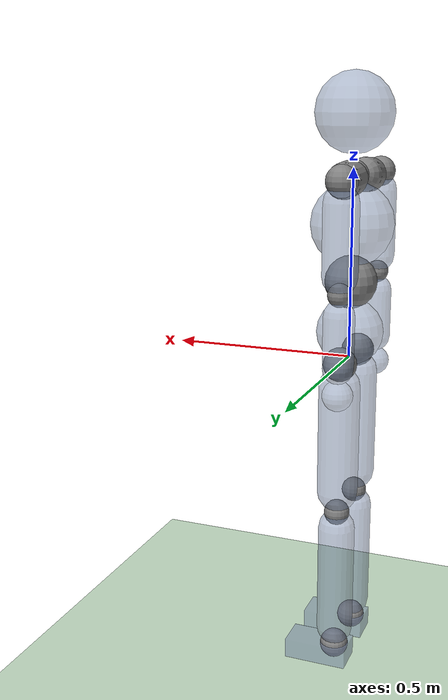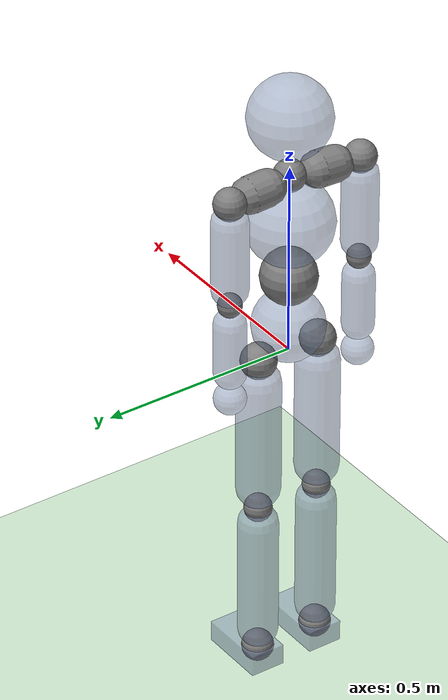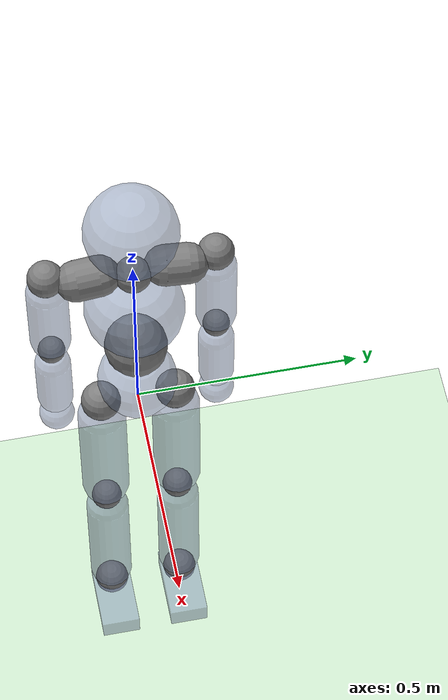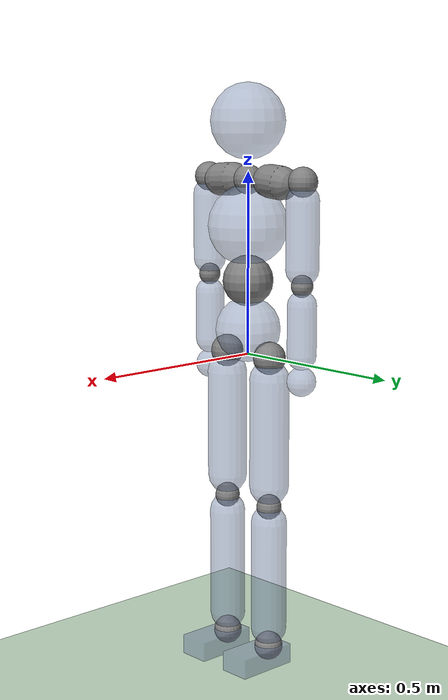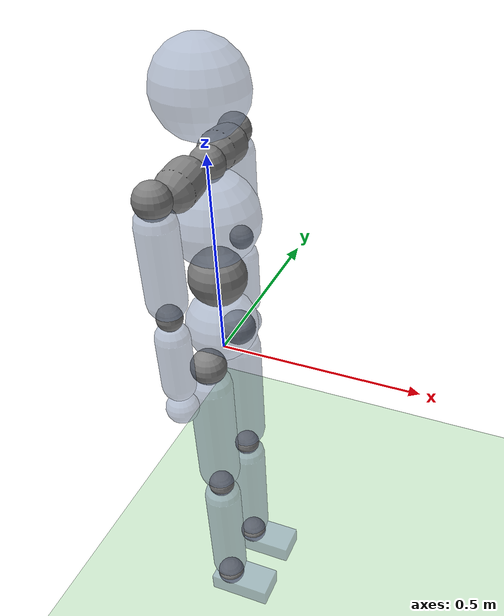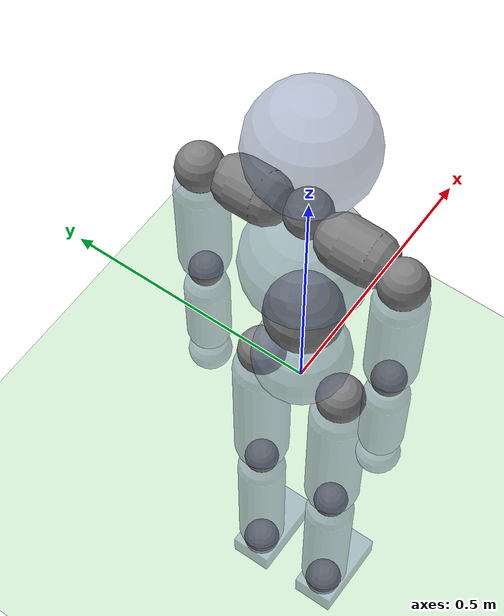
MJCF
<mujoco model="humanoid">
    <compiler angle="radian"/>
    <option gravity="0 0 -9.81"/>
    <default>
        <joint limited="true" armature="0.01" damping="2" />
    </default>
    <asset>
        <texture builtin="gradient" height="100" rgb1=".4 .5 .6" rgb2="0 0 0" type="skybox" width="100"/>
        <texture builtin="flat" height="1278" mark="cross" markrgb="1 1 1" name="texgeom" random="0.01" rgb1="0.8 0.6 0.4" rgb2="0.8 0.6 0.4" type="cube" width="127"/>
        <texture builtin="checker" height="100" name="texplane" rgb1="0 0 0" rgb2="0.8 0.8 0.8" type="2d" width="100"/>
        <material name="MatPlane" reflectance="0.5" shininess="1" specular="1" texrepeat="60 60" texture="texplane"/>
        <material name="geom" texture="texgeom" texuniform="true"/>
    </asset>
    <worldbody>
        <geom condim="3" material="MatPlane" name="floor" pos="0 0 -0.886" rgba="0.8 0.9 0.8 1" size="20 20 0.125" type="plane"/>
	<body name="root" pos="0.0 0.0 0.0">
		<geom type="sphere" name="root" mass="6.0" size="0.09" pos="0 0 0.07" rgba="0.4706 0.549 0.6863 0.5"/>
		<joint name="root" type="free" limited="true" pos="0 0 0" />
		<site type="sphere" name="joint_waist" pos="0 0 0.205" size="0.07" />
		<body name="chest" pos="0.0 0.0 0.236151">
			<geom type="sphere" name="chest" mass="14.0" size="0.11" pos="0 0 0.12" rgba="0.4706 0.549 0.6863 0.5"/>
			<joint type="hinge" name="chest_0" axis="1 0 0" pos="0 0 0" range="-1.2 1.2" limited="true" />
			<joint type="hinge" name="chest_1" axis="0 1 0" pos="0 0 0" range="-1.2 1.5" limited="true" />
			<joint type="hinge" name="chest_2" axis="0 0 1" pos="0 0 0" range="-1.4 1.4" limited="true" />
			<site type="capsule" name="right_clavicle" pos="-0.011 0.095 0.24" euler="-1.64 0.0338 -0.21" size="0.045 0.025" />
			<site type="capsule" name="left_clavicle" pos="-0.011 -0.095 0.24" euler="1.64 0.0338 0.21" size="0.045 0.025" />
			<body name="neck" pos="0.0 0.0 0.223894">
				<geom type="sphere" name="neck" mass="2.0" size="0.1025" pos="0 0 0.175" rgba="0.4706 0.549 0.6863 0.5"/>
				<joint type="hinge" name="neck_0" axis="1 0 0" pos="0 0 0" range="-1 1" limited="true" />
				<joint type="hinge" name="neck_1" axis="0 1 0" pos="0 0 0" range="-1 1.2" limited="true" />
				<joint type="hinge" name="neck_2" axis="0 0 1" pos="0 0 0" range="-1.4 1.4" limited="true" />
				<site type="sphere" name="joint_neck" pos="0 0 0.02" size="0.04" />
			</body>
			<body name="right_shoulder" pos="-0.02405 0.18311 0.2435">
				<geom type="capsule" name="right_shoulder" mass="1.5" fromto="0 0 -0.23 0 0 -0.05000000000000002" size="0.045" rgba="0.4706 0.549 0.6863 0.5"/>
				<joint type="hinge" name="right_shoulder_0" axis="1 0 0" pos="0 0 0" range="-3.14 0.5" limited="true" />
				<joint type="hinge" name="right_shoulder_1" axis="0 1 0" pos="0 0 0" range="-3.14 1.5" limited="true" />
				<joint type="hinge" name="right_shoulder_2" axis="0 0 1" pos="0 0 0" range="-0.7 3.14" limited="true" />
				<site type="sphere" name="joint_right_shoulder" pos="0 0 0" size="0.04" />
				<body name="right_elbow" pos="0.0 0.0 -0.274788">
					<geom type="capsule" name="right_elbow" mass="1" fromto="0 0 -0.1875 0 0 -0.05249999999999999" size="0.04" rgba="0.4706 0.549 0.6863 0.5"/>
					<joint name="right_elbow" type="hinge" pos="0 0 0" axis="0 -1 0" range="0 2.8" limited="true" />
					<site type="sphere" name="joint_right_elbow" pos="0 0 0" size="0.03" />
					<geom type="sphere" name="right_wrist" mass="0.5" size="0.04" pos="0.0 0.0 -0.258947" rgba="0.4706 0.549 0.6863 0.5"/>
				</body>
			</body>
			<body name="left_shoulder" pos="-0.02405 -0.18311 0.2435">
				<geom type="capsule" name="left_shoulder" mass="1.5" fromto="0 0 -0.23 0 0 -0.05000000000000002" size="0.045" rgba="0.4706 0.549 0.6863 0.5"/>
				<joint type="hinge" name="left_shoulder_0" axis="1 0 0" pos="0 0 0" range="-3.14 0.5" limited="true" />
				<joint type="hinge" name="left_shoulder_1" axis="0 1 0" pos="0 0 0" range="-3.14 1.5" limited="true" />
				<joint type="hinge" name="left_shoulder_2" axis="0 0 1" pos="0 0 0" range="-0.7 3.14" limited="true" />
				<site type="sphere" name="joint_left_shoulder" pos="0 0 0" size="0.04" />
				<body name="left_elbow" pos="0.0 0.0 -0.274788">
					<geom type="capsule" name="left_elbow" mass="1" fromto="0 0 -0.1875 0 0 -0.05249999999999999" size="0.04" rgba="0.4706 0.549 0.6863 0.5"/>
					<joint name="left_elbow" type="hinge" pos="0 0 0" axis="0 -1 0" range="0 2.8" limited="true" />
					<site type="sphere" name="joint_left_elbow" pos="0 0 0" size="0.03" />
					<geom type="sphere" name="left_wrist" mass="0.5" size="0.04" pos="0.0 0.0 -0.258947" rgba="0.4706 0.549 0.6863 0.5"/><!-- left_wrist is a None joint and does not require an explicit joint definition -->
				</body>
			</body>
		</body>
		<body name="right_hip" pos="0.0 0.084887 0.0">
			<geom type="capsule" name="right_hip" mass="4.5" fromto="0 0 -0.36 0 0 -0.06" size="0.055" rgba="0.4706 0.549 0.6863 0.5"/>
			<joint type="hinge" name="right_hip_0" axis="1 0 0" pos="0 0 0" range="-1.2 1.2" limited="true" />
			<joint type="hinge" name="right_hip_1" axis="0 1 0" pos="0 0 0" range="-1.2 1.2" limited="true" />
			<joint type="hinge" name="right_hip_2" axis="0 0 1" pos="0 0 0" range="-0.5 0.5" limited="true" />
			<site type="sphere" name="joint_right_hip" pos="0 0 0" size="0.045" />
			<body name="right_knee" pos="0.0 0.0 -0.421546">
				<geom type="capsule" name="right_knee" mass="3" fromto="0 0 -0.355 0 0 -0.04500000000000001" size="0.05" rgba="0.4706 0.549 0.6863 0.5"/>
				<joint name="right_knee" type="hinge" pos="0 0 0" axis="0 -1 0" range="-2.8 0" limited="true" />
				<site type="sphere" name="joint_right_knee" pos="0 0 0" size="0.035" />
				<body name="right_ankle" pos="0.0 0.0 -0.40987">
					<geom type="box" name="right_ankle" mass="1" size="0.0885 0.045 0.0275" pos="0.045 0 -0.0225" rgba="0.4706 0.549 0.6863 0.5"/>
					<joint type="hinge" name="right_ankle_0" axis="1 0 0" pos="0 0 0" range="-0.1 0.1" limited="true" />
					<joint type="hinge" name="right_ankle_1" axis="0 1 0" pos="0 0 0" range="-1 1" limited="true" />
					<joint type="hinge" name="right_ankle_2" axis="0 0 1" pos="0 0 0" range="-1 1" limited="true" />
					<site type="sphere" name="joint_right_ankle" pos="0 0 0" size="0.04" />
				</body>
			</body>
		</body>
		<body name="left_hip" pos="0.0 -0.084887 0.0">
			<geom type="capsule" name="left_hip" mass="4.5" fromto="0 0 -0.36 0 0 -0.06" size="0.055" rgba="0.4706 0.549 0.6863 0.5"/>
			<joint type="hinge" name="left_hip_0" axis="1 0 0" pos="0 0 0" range="-1.2 1.2" limited="true" />
			<joint type="hinge" name="left_hip_1" axis="0 1 0" pos="0 0 0" range="-1.2 1.2" limited="true" />
			<joint type="hinge" name="left_hip_2" axis="0 0 1" pos="0 0 0" range="-0.5 0.5" limited="true" />
			<site type="sphere" name="joint_left_hip" pos="0 0 0" size="0.045" />
			<body name="left_knee" pos="0.0 0.0 -0.421546">
				<geom type="capsule" name="left_knee" mass="3" fromto="0 0 -0.355 0 0 -0.04500000000000001" size="0.05" rgba="0.4706 0.549 0.6863 0.5"/>
				<joint name="left_knee" type="hinge" pos="0 0 0" axis="0 -1 0" range="-2.8 0" limited="true" />
				<site type="sphere" name="joint_left_knee" pos="0 0 0" size="0.035" />
				<body name="left_ankle" pos="0.0 0.0 -0.40987">
					<geom type="box" name="left_ankle" mass="1" size="0.0885 0.045 0.0275" pos="0.045 0 -0.0225" rgba="0.4706 0.549 0.6863 0.5"/>
					<joint type="hinge" name="left_ankle_0" axis="1 0 0" pos="0 0 0" range="-0.1 0.1" limited="true" />
					<joint type="hinge" name="left_ankle_1" axis="0 1 0" pos="0 0 0" range="-1 1" limited="true" />
					<joint type="hinge" name="left_ankle_2" axis="0 0 1" pos="0 0 0" range="-1 1" limited="true" />
					<site type="sphere" name="joint_left_ankle" pos="0 0 0" size="0.04" />
				</body>
			</body>
		</body>
	</body>
	</worldbody>
<actuator>
		<motor joint="chest_0" name="chest_0" gear="200.0" />
		<motor joint="chest_1" name="chest_1" gear="200.0" />
		<motor joint="chest_2" name="chest_2" gear="200.0" />
		<motor joint="neck_0" name="neck_0" gear="50.0" />
		<motor joint="neck_1" name="neck_1" gear="50.0" />
		<motor joint="neck_2" name="neck_2" gear="50.0" />
		<motor joint="right_shoulder_0" name="right_shoulder_0" gear="100.0" />
		<motor joint="right_shoulder_1" name="right_shoulder_1" gear="100.0" />
		<motor joint="right_shoulder_2" name="right_shoulder_2" gear="100.0" />
		<motor joint="right_elbow" name="right_elbow" gear="60.0" />
		<motor joint="left_shoulder_0" name="left_shoulder_0" gear="100.0" />
		<motor joint="left_shoulder_1" name="left_shoulder_1" gear="100.0" />
		<motor joint="left_shoulder_2" name="left_shoulder_2" gear="100.0" />
		<motor joint="left_elbow" name="left_elbow" gear="60.0" />
		<motor joint="right_hip_0" name="right_hip_0" gear="200.0" />
		<motor joint="right_hip_1" name="right_hip_1" gear="200.0" />
		<motor joint="right_hip_2" name="right_hip_2" gear="200.0" />
		<motor joint="right_knee" name="right_knee" gear="150.0" />
		<motor joint="right_ankle_0" name="right_ankle_0" gear="90.0" />
		<motor joint="right_ankle_1" name="right_ankle_1" gear="90.0" />
		<motor joint="right_ankle_2" name="right_ankle_2" gear="90.0" />
		<motor joint="left_hip_0" name="left_hip_0" gear="200.0" />
		<motor joint="left_hip_1" name="left_hip_1" gear="200.0" />
		<motor joint="left_hip_2" name="left_hip_2" gear="200.0" />
		<motor joint="left_knee" name="left_knee" gear="150.0" />
		<motor joint="left_ankle_0" name="left_ankle_0" gear="90.0" />
		<motor joint="left_ankle_1" name="left_ankle_1" gear="90.0" />
		<motor joint="left_ankle_2" name="left_ankle_2" gear="90.0" />
	</actuator>
</mujoco>
